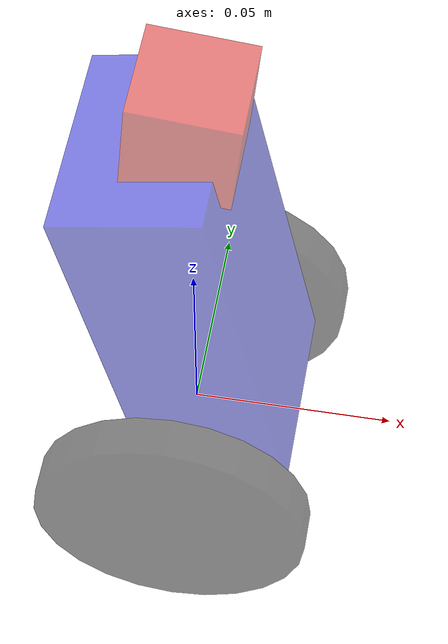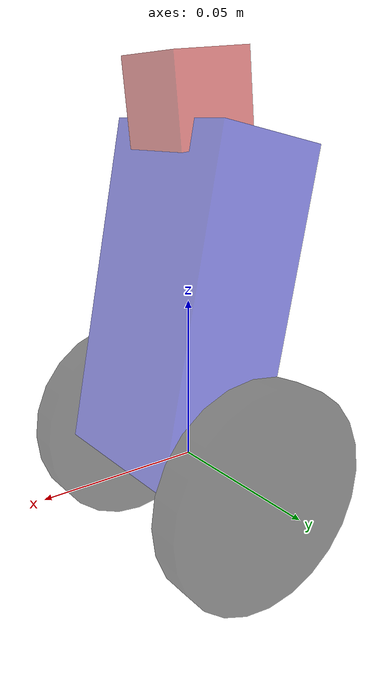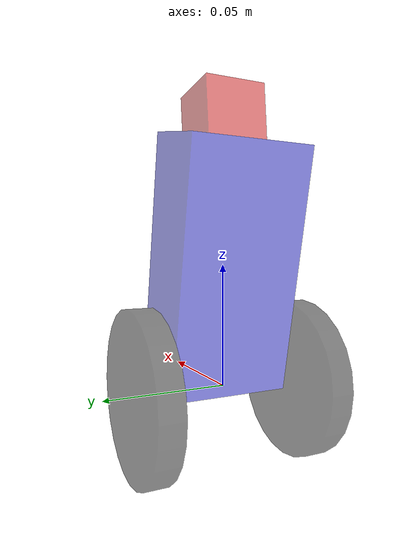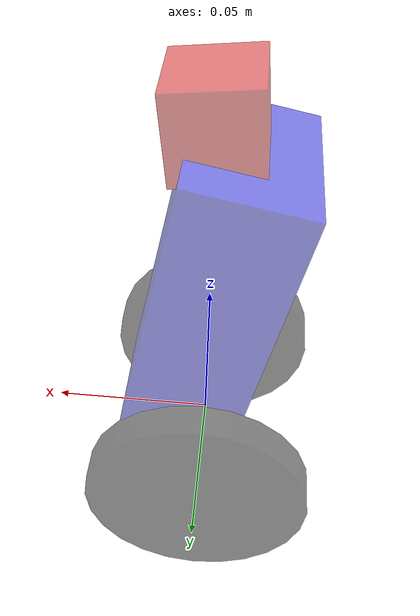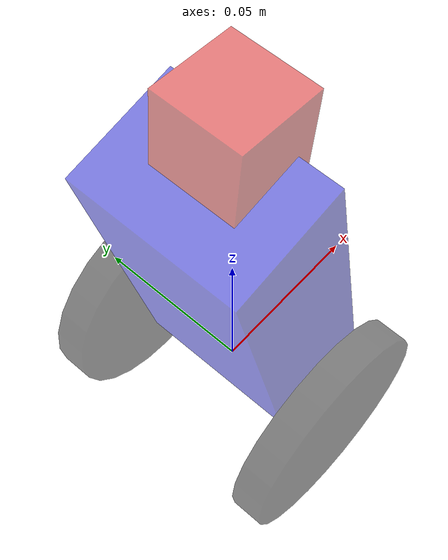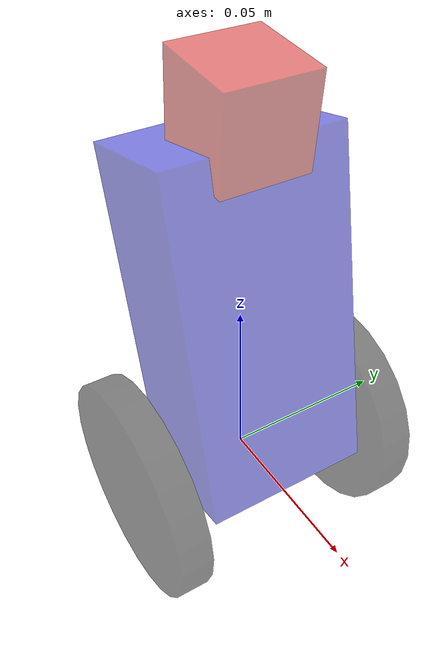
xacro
<?xml version="1.0"?>
<robot name="edumip_my_robot"  xmlns:xacro="http://www.ros.org/wiki/xacro">

  <xacro:property name="wheel_separation" value="0.070" />
  <xacro:property name="wheel_radius"     value="0.034" />
  <xacro:property name="wheel_width"      value="0.010" />
  <xacro:property name="body_height"      value="0.1"   />
  <xacro:property name="body_width"       value="0.050" />
  <xacro:property name="body_length"      value="0.035" />
  <xacro:property name="pii"              value="3.1415"/>
  <xacro:property name="camera_link"      value="0.025" />

  <material name="red">
    <color rgba="0.8 0 0 .5"/>
  </material>

  <material name="green">
    <color rgba="0 0.8 0 .5"/>
  </material>

  <material name="blue">
    <color rgba="0 0 0.8 .5"/>
  </material>

  <material name="black">
    <color rgba="0 0 0 .5"/>
  </material>

  <link name="edumip_body">
    <visual>
      <origin xyz="0 0 ${0.5*body_height}" rpy="0 -0.20 0"/>
      <geometry>
        <box size="${body_length} ${body_width} ${body_height}"/>
      </geometry>
      <material name="blue"/>
    </visual>

   <collision>
      <origin xyz="0 0 ${0.5*body_height}" rpy="0 -0.20 0"/>
      <geometry>
        <box size="${body_length} ${body_width} ${body_height}"/>
      </geometry>
    </collision>

    <inertial>
      <origin xyz="0 0 -.5" rpy="0 0 0"/>
      <mass value="1"/>
      <inertia ixx="1" ixy="0" ixz="0" iyy="1" iyz="0" izz="1"/>
    </inertial>

  </link>

  <link name="wheelL">
    <visual>
      <origin rpy="${pii/2} 0 0" xyz="0 0 0"/>
      <geometry>
        <cylinder length="${wheel_width}" radius="${wheel_radius}"/>
      </geometry>
      <material name="black"/>
    </visual>

    <collision>
      <origin xyz="0 0 0" rpy="${pii/2} 0  0" />
      <geometry>
        <cylinder length="${wheel_width}" radius="${wheel_radius}"/>
      </geometry>
    </collision>

    <inertial>
      <origin xyz="0 0 0" rpy="0 0 0"/>
      <mass value="1"/>
      <inertia ixx="0.1" ixy="0" ixz="0" iyy="1" iyz="0" izz="0.1"/>
    </inertial>

  </link>

  <joint name="jointL" type="continuous">
    <axis xyz="0 1 0" rpy="0 0 0" />
    <parent link="edumip_body"/>
    <child link="wheelL"/>
    <origin rpy="0 0 0" xyz="0 ${wheel_separation * 0.5} 0.0"/>
  </joint>

  <link name="wheelR">
    <visual>
      <origin rpy="${pii/2} 0 0" xyz="0 0 0"/>
      <geometry>
        <cylinder length="${wheel_width}" radius="${wheel_radius}"/>
      </geometry>
      <material name="black"/>
    </visual>

    <collision>
      <origin xyz="0 0 0" rpy="${pii/2} 0  0" />
      <geometry>
        <cylinder length="${wheel_width}" radius="${wheel_radius}"/>
      </geometry>
    </collision>

    <inertial>
      <origin xyz="0 0 0" rpy="0 0 0"/>
      <mass value="1"/>
      <inertia ixx="0.1" ixy="0" ixz="0" iyy="1" iyz="0" izz="0.1"/>
    </inertial>

  </link>

  <joint name="jointR" type="continuous">
    <axis xyz="0 1 0" rpy="0 0 0" />
    <parent link="edumip_body"/>
    <child link="wheelR"/>
    <origin rpy="0 0 0" xyz="0 ${-wheel_separation * 0.5} 0.0"/>
  </joint>

  <joint name="camera_joint" type="fixed">
    <axis xyz="0 1 0" />
    <origin xyz="0 0 ${body_height+(.3*camera_link)}" rpy="0 .1 0"/>
    <parent link="edumip_body"/>
    <child link="camera_link"/>
  </joint>

  <!-- Camera -->
  <link name="camera_link">
    <collision>
      <origin xyz="0 0 0" rpy="0 0 0"/>
      <geometry>
    <box size="${camera_link} ${camera_link} ${camera_link}"/>
      </geometry>
    </collision>

    <visual>
      <origin xyz="0 0 0" rpy="0 0 0"/>
      <geometry>
    <box size="${camera_link} ${camera_link} ${camera_link}"/>
      </geometry>
      <material name="red"/>
    </visual>

    <inertial>
      <mass value="1e-5" />
      <origin xyz="0 0 0" rpy="0 0 0"/>
      <inertia ixx="1e-6" ixy="0" ixz="0" iyy="1e-6" iyz="0" izz="1e-6" />
    </inertial>
  </link>

  <gazebo reference="camera_link">
    <mu1>0.2</mu1>
    <mu2>0.2</mu2>
    <material>Gazebo/Red</material>
  </gazebo>

  <gazebo reference="edumip_body">
    <mu1>0.2</mu1>
    <mu2>0.2</mu2>
    <material>Gazebo/Blue</material>
  </gazebo>

  <gazebo reference="wheelR">
    <mu1>0.2</mu1>
    <mu2>0.2</mu2>
    <material>Gazebo/Black</material>
  </gazebo>

  <gazebo reference="wheelL">
    <mu1>0.2</mu1>
    <mu2>0.2</mu2>
    <material>Gazebo/Black</material>
  </gazebo>

  <gazebo reference="stripeL">
    <mu1>0.2</mu1>
    <mu2>0.2</mu2>
    <material>Gazebo/Blue</material>
  </gazebo>

  <gazebo reference="mass">
    <mu1>0.2</mu1>
    <mu2>0.2</mu2>
    <material>Gazebo/Black</material>
  </gazebo>

<gazebo>
 <plugin name="differential_drive_controller" filename="libgazebo_ros_diff_drive.so">
   <legacyMode>false</legacyMode>
   <rosDebugLevel>3</rosDebugLevel>
   <alwaysOn>true</alwaysOn>
   <updateRate>10</updateRate>
   <leftJoint>jointL</leftJoint>
   <rightJoint>jointR</rightJoint>
   <wheelSeparation>${wheel_separation}</wheelSeparation>
   <wheelDiameter>${wheel_radius*2.0}</wheelDiameter>
   <torque>0.1</torque>
   <commandTopic>/edumip/cmd</commandTopic>
   <odometryTopic>/edumip/odom</odometryTopic>
   <odometryFrame>world</odometryFrame>
   <robotBaseFrame>edumip_body</robotBaseFrame>
   <publishTf>1</publishTf>
   <publishWheelTF>false</publishWheelTF>
   <publishWheelJointState>true</publishWheelJointState>
   <wheelAcceleration>0</wheelAcceleration>
   <wheelTorque>0.1</wheelTorque>
   <odometrySource>world</odometrySource>
 </plugin>
</gazebo>

<gazebo reference="camera_link">
 <sensor type="camera" name="camera1">
   <update_rate>30.0</update_rate>
   <camera name="head">
     <horizontal_fov>1.3962634</horizontal_fov>
     <image>
       <width>800</width>
       <height>800</height>
       <format>R8G8B8</format>
     </image>
     <clip>
       <near>0.02</near>
       <far>300</far>
     </clip>
     <noise>
       <type>gaussian</type>
       <mean>0.0</mean>
       <stddev>0.007</stddev>
     </noise>
   </camera>
   <plugin name="camera_controller" filename="libgazebo_ros_camera.so">
     <robotNamespace>edumip</robotNamespace>
     <alwaysOn>true</alwaysOn>
     <updateRate>10.0</updateRate>
     <cameraName>camera1</cameraName>
     <imageTopicName>image_raw</imageTopicName>
     <cameraInfoTopicName>camera_info</cameraInfoTopicName>
     <frameName>camera_link</frameName>
     <hackBaseline>0.07</hackBaseline>
     <distortionK1>0.0</distortionK1>
     <distortionK2>0.0</distortionK2>
     <distortionK3>0.0</distortionK3>
     <distortionT1>0.0</distortionT1>
     <distortionT2>0.0</distortionT2>
   </plugin>
 </sensor>
</gazebo>

</robot>
